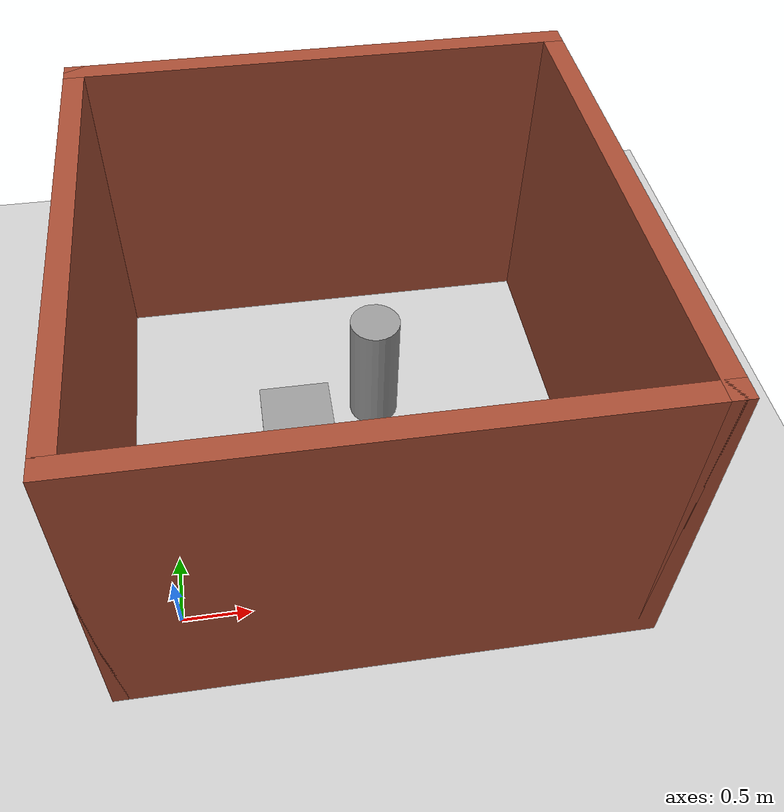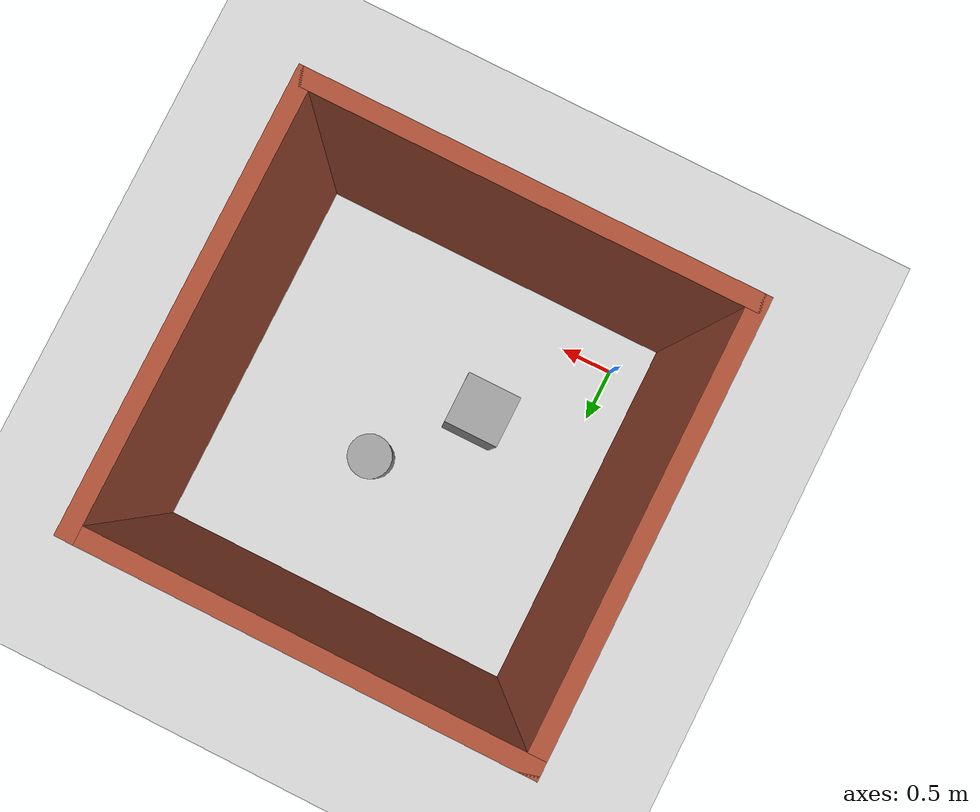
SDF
<sdf version="1.7">
 <world name="default">
  <light name="sun" type="directional">
   <pose>0 0 10 0 -0 0</pose>
   <diffuse>0.8 0.8 0.8 1</diffuse>
   <specular>0.2 0.2 0.2 1</specular>
   <attenuation>
    <range>1000</range>
    <constant>0.9</constant>
    <linear>0.01</linear>
    <quadratic>0.001</quadratic>
   </attenuation>
   <direction>-0.5 0.1 -0.9</direction>
   <spot><inner_angle>0</inner_angle><outer_angle>0</outer_angle><falloff>0</falloff></spot>
  </light>
  <model name="ground_plane">
   <static>1</static>
   <link name="link">
    <collision name="collision">
     <geometry><plane><normal>0 0 1</normal><size>100 100</size></plane></geometry>
     <surface><friction><ode><mu>100</mu><mu2>50</mu2></ode></friction></surface>
    </collision>
    <visual name="visual">
     <cast_shadows>0</cast_shadows>
     <geometry><plane><normal>0 0 1</normal><size>100 100</size></plane></geometry>
     <material>
      <script><uri>file://media/materials/scripts/gazebo.material</uri><name>Gazebo/Grey</name></script>
     </material>
    </visual>
   </link>
  </model>
  <gravity>0 0 -9.8</gravity>
  <magnetic_field>6e-06 2.3e-05 -4.2e-05</magnetic_field>
  <atmosphere type="adiabatic"/>
  <physics type="ode">
   <max_step_size>0.001</max_step_size>
   <real_time_factor>1</real_time_factor>
   <real_time_update_rate>1000</real_time_update_rate>
  </physics>
  <scene><ambient>0.4 0.4 0.4 1</ambient><background>0.7 0.7 0.7 1</background><shadows>1</shadows></scene>
  <spherical_coordinates>
   <surface_model>EARTH_WGS84</surface_model>
   <latitude_deg>0</latitude_deg>
   <longitude_deg>0</longitude_deg>
   <elevation>0</elevation>
   <heading_deg>0</heading_deg>
  </spherical_coordinates>
  <model name="race">
   <pose>1.40385 1.34933 0 0 -0 0</pose>
   <link name="Wall_3">
    <collision name="Wall_3_Collision">
     <geometry><box><size>3.75 0.15 2.5</size></box></geometry>
     <pose>0 0 1.25 0 -0 0</pose>
    </collision>
    <visual name="Wall_3_Visual">
     <pose>0 0 1.25 0 -0 0</pose>
     <geometry><box><size>3.75 0.15 2.5</size></box></geometry>
     <material>
      <script><uri>file://media/materials/scripts/gazebo.material</uri><name>Gazebo/Bricks</name></script>
      <ambient>1 1 1 1</ambient>
     </material>
     <meta><layer>0</layer></meta>
    </visual>
    <pose>-1.8 0 0 0 -0 1.5708</pose>
   </link>
   <link name="Wall_5">
    <collision name="Wall_5_Collision">
     <geometry><box><size>3.75 0.15 2.5</size></box></geometry>
     <pose>0 0 1.25 0 -0 0</pose>
    </collision>
    <visual name="Wall_5_Visual">
     <pose>0 0 1.25 0 -0 0</pose>
     <geometry><box><size>3.75 0.15 2.5</size></box></geometry>
     <material>
      <script><uri>file://media/materials/scripts/gazebo.material</uri><name>Gazebo/Bricks</name></script>
      <ambient>1 1 1 1</ambient>
     </material>
     <meta><layer>0</layer></meta>
    </visual>
    <pose>-0 -1.8 0 0 -0 0</pose>
   </link>
   <link name="Wall_7">
    <collision name="Wall_7_Collision">
     <geometry><box><size>3.75 0.15 2.5</size></box></geometry>
     <pose>0 0 1.25 0 -0 0</pose>
    </collision>
    <visual name="Wall_7_Visual">
     <pose>0 0 1.25 0 -0 0</pose>
     <geometry><box><size>3.75 0.15 2.5</size></box></geometry>
     <material>
      <script><uri>file://media/materials/scripts/gazebo.material</uri><name>Gazebo/Bricks</name></script>
      <ambient>1 1 1 1</ambient>
     </material>
     <meta><layer>0</layer></meta>
    </visual>
    <pose>1.8 0 0 0 -0 1.5708</pose>
   </link>
   <link name="Wall_8">
    <collision name="Wall_8_Collision">
     <geometry><box><size>3.75 0.15 2.5</size></box></geometry>
     <pose>0 0 1.25 0 -0 0</pose>
    </collision>
    <visual name="Wall_8_Visual">
     <pose>0 0 1.25 0 -0 0</pose>
     <geometry><box><size>3.75 0.15 2.5</size></box></geometry>
     <material>
      <script><uri>file://media/materials/scripts/gazebo.material</uri><name>Gazebo/Bricks</name></script>
      <ambient>1 1 1 1</ambient>
     </material>
     <meta><layer>0</layer></meta>
    </visual>
    <pose>-0 1.8 0 0 -0 3.14159</pose>
   </link>
   <static>1</static>
  </model>
  <model name="unit_cylinder">
   <pose>1.64399 1.75125 0.499997 0 -0 1e-06</pose>
   <link name="link">
    <inertial>
     <mass>1</mass>
     <inertia><ixx>0.145833</ixx><ixy>0</ixy><ixz>0</ixz><iyy>0.145833</iyy><iyz>0</iyz><izz>0.125</izz></inertia>
    </inertial>
    <collision name="collision">
     <geometry><cylinder><radius>0.194459</radius><length>1</length></cylinder></geometry>
    </collision>
    <visual name="visual">
     <geometry><cylinder><radius>0.194459</radius><length>1</length></cylinder></geometry>
     <material>
      <script><name>Gazebo/Grey</name><uri>file://media/materials/scripts/gazebo.material</uri></script>
     </material>
    </visual>
   </link>
  </model>
  <model name="unit_box">
   <pose>0.958045 0.959233 0.499998 4e-06 -5e-06 -3e-05</pose>
   <link name="link">
    <inertial>
     <mass>1</mass>
     <inertia>
      <ixx>0.166667</ixx>
      <ixy>0</ixy>
      <ixz>0</ixz>
      <iyy>0.166667</iyy>
      <iyz>0</iyz>
      <izz>0.166667</izz>
     </inertia>
    </inertial>
    <collision name="collision"><geometry><box><size>0.497013 0.474014 1</size></box></geometry></collision>
    <visual name="visual">
     <geometry><box><size>0.497013 0.474014 1</size></box></geometry>
     <material>
      <script><name>Gazebo/Grey</name><uri>file://media/materials/scripts/gazebo.material</uri></script>
     </material>
    </visual>
   </link>
  </model>
 </world>
</sdf>
